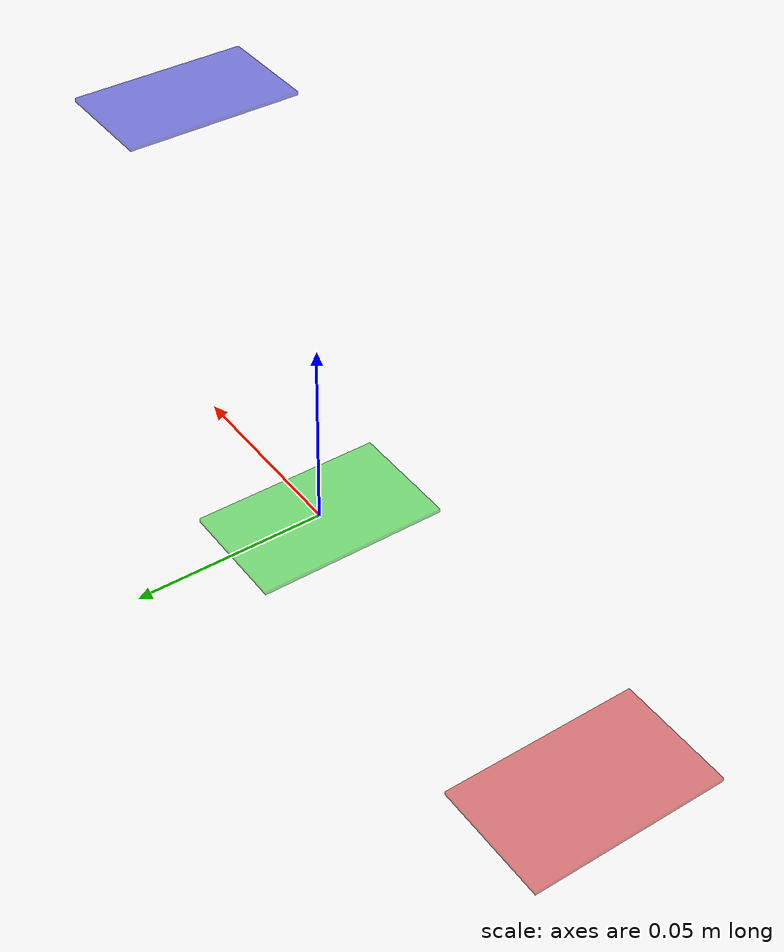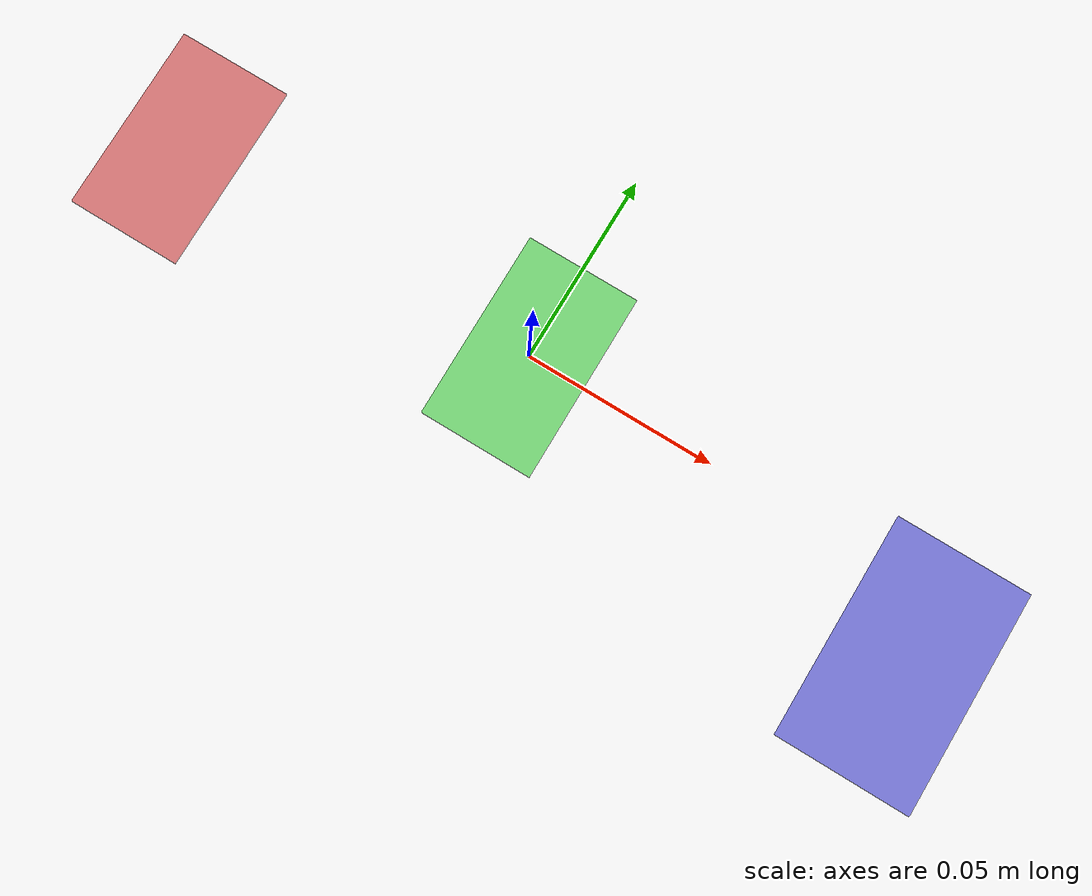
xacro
<?xml version="1.0"?>
<robot name="imu_test" xmlns:xacro="http://ros.org/wiki/xacro">

  <material name="blue">
    <color rgba="0 0 0.8 0.5"/>
  </material>
  <material name="green">
    <color rgba="0 0.8 0 0.5"/>
  </material>
  <material name="red">
    <color rgba="0.8 0 0 0.5"/>
  </material>
  <material name="clear">
    <color rgba="0 0 0 0"/>
  </material>

  <xacro:property name="PI" value="3.1415926535897931"/>

  <link name="base_link"/>

  <link name="imu_link_stateless">
    <visual>
      <geometry>
        <box size="0.03 0.05 0.001"/>
      </geometry>
      <material name="green"/>
    </visual>
  </link>

  <joint name="base_imu_stateless" type="floating">
    <parent link="base_link"/>
    <child link="imu_link_stateless"/>
    <origin xyz="0 0 0" rpy="0 0 0"/>
  </joint>

  <link name="imu_link_madgwick">
    <visual>
      <geometry>
        <box size="0.03 0.05 0.001"/>
      </geometry>
      <material name="blue"/>
    </visual>
  </link>

  <joint name="base_imu_madgwick" type="floating">
    <parent link="base_link"/>
    <child link="imu_link_madgwick"/>
    <origin xyz="0.1 -0.025 0.06" rpy="0 0 0"/>
  </joint>

  <link name="imu_link_complementary">
    <visual>
      <geometry>
        <box size="0.03 0.05 0.001"/>
      </geometry>
      <material name="red"/>
    </visual>
  </link>

  <joint name="base_imu_complementary" type="floating">
    <parent link="base_link"/>
    <child link="imu_link_complementary"/>
    <origin xyz="-0.1 0 0" rpy="0 0 0"/>
  </joint>

</robot>
